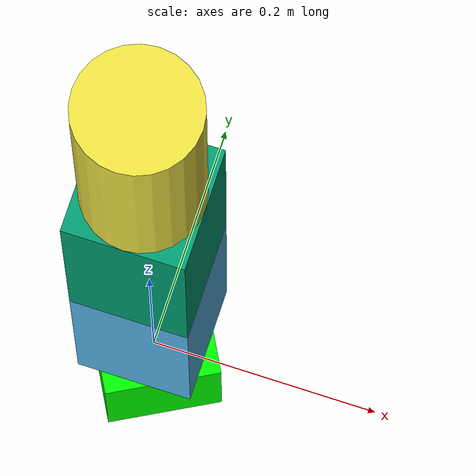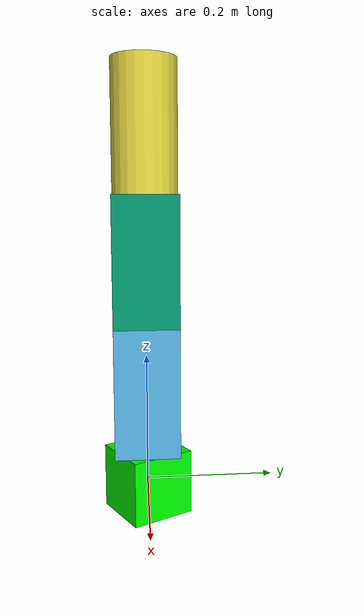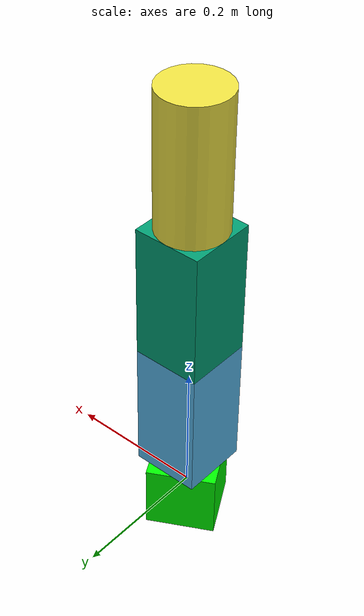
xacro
<?xml version="1.0"?>

<robot xmlns:xacro="http://www.ros.org/wiki/xacro" name="arm">

  <xacro:macro name="cylinder_inertial" params="radius length mass *origin">
    <inertial>
      <mass value="${mass}" />
      <xacro:insert_block name="origin" />
      <inertia ixx="${0.0833333 * mass * (3 * radius *
      radius + length * length)}" ixy="0.0" ixz="0.0"
      iyy="${0.0833333 * mass * (3 * radius * radius +
      length * length)}" iyz="0.0"
      izz="${0.5 * mass * radius * radius}" />
    </inertial>
  </xacro:macro>

    <link name="world_link">
    <visual>
      <geometry>
          <box size="0.1 0.1 0.1" />
      </geometry>
      <origin rpy="0 0 0.5" xyz="0 0 0"/>
      <material name="green">
      <color rgba="0 1 0 0.9"/>
    </material>
    </visual>
    <inertial>
      <mass value="0.1"/>
      <inertia ixx="1.06682889e+08" ixy="0.0" ixz="0.0" iyy="9.92165844e+07" iyz="0.0" izz="1.26939175e+08"/>
    </inertial>
    <collision>
      <geometry>
        <box size="0.1 0.1 0.1" />
      </geometry>
      <origin rpy="0 0 0.5" xyz="0 0 0"/>
      <material name="green">
      <color rgba="0 1 0 0.9"/>
    </material>
    </collision>
  </link>

  <joint name="j0" type="revolute">
    <parent link="world_link"/>
    <child link="link1"/>
    <origin xyz="0 0 0.05"/> <!--Position of the joint with respect the previous link-->
    <axis xyz="0 0 1"/>
    <limit effort="300" velocity="0.1" lower="-2.57" upper="2.57"/>
  </joint>

  <link name="link1">
    <visual>
      <geometry>
          <box size="0.1 0.1 0.2" />
      </geometry>
      <origin rpy="0 0 0" xyz="0 0 0.1"/> <!--Position of the center of mass-->
    </visual>
      <collision>
      <geometry>
          <box size="0.1 0.1 0.2" />
      </geometry>
      <origin rpy="0 0 0" xyz="0 0 0.1"/> <!--Position of the center of mass-->
    </collision>
    <inertial>
      <mass value="0.1"/>
      <inertia ixx="0.01" ixy="0.0" ixz="0.0" iyy="0.01" iyz="0.0" izz="0.01"/>
    </inertial>
  </link>

 <joint name="j1" type="revolute">
    <parent link="link1"/>
    <child link="link2"/>
    <origin xyz="0 0 0.2"/>
    <axis xyz="0 1 0" />
    <limit effort="300" velocity="0.1" lower="-2.57" upper="2.57"/>
  </joint>

  <link name="link2">
    <visual>
      <geometry>
          <box size="0.1 0.1 0.2" />
      </geometry>
      <origin rpy="0 0 0" xyz="0 0 0.1"/>
    </visual>
    <inertial>
      <mass value="0.1"/>
      <inertia ixx="0.01" ixy="0.0" ixz="0.0" iyy="0.01" iyz="0.0" izz="0.01"/>
    </inertial>
    <collision>
      <geometry>
          <box size="0.1 0.1 0.2" />
      </geometry>
      <origin rpy="0 0 0" xyz="0 0 0.1"/>
    </collision>
  </link>

 <joint name="j2" type="revolute">
    <parent link="link2"/>
    <child link="link3"/>
    <origin xyz="0 0 0.2"/>
    <axis xyz="0 1 0" />
    <limit effort="300" velocity="0.1" lower="-2.57" upper="2.57"/>
  </joint>

 <link name="link3">
    <visual>
      <geometry>
          <cylinder length="0.2" radius="0.05"/>
      </geometry>
      <origin rpy="0 0 0" xyz="0 0 0.1"/>
    </visual>
     <xacro:cylinder_inertial radius="0.1" length="0.2" mass="0.3">
      <origin xyz="0 0 0" rpy="0 0 0" />
      </xacro:cylinder_inertial>
  </link>

</robot>
